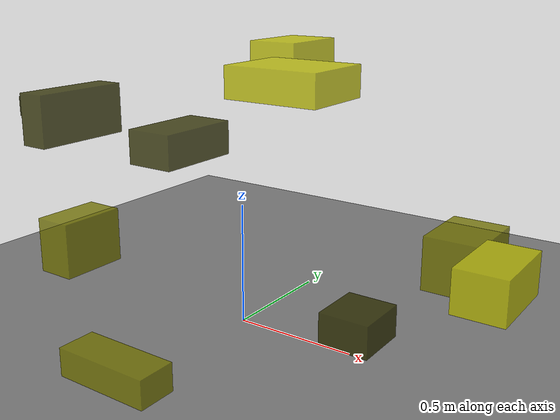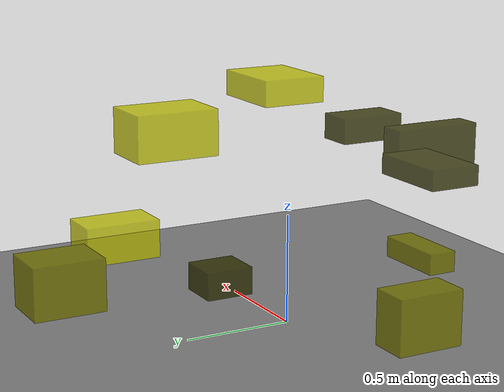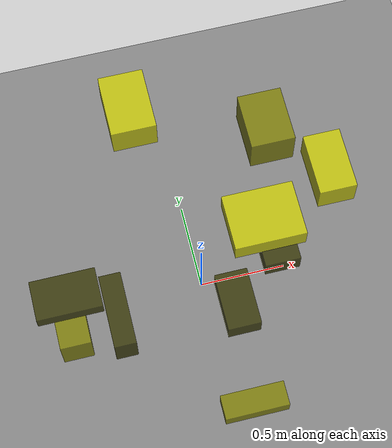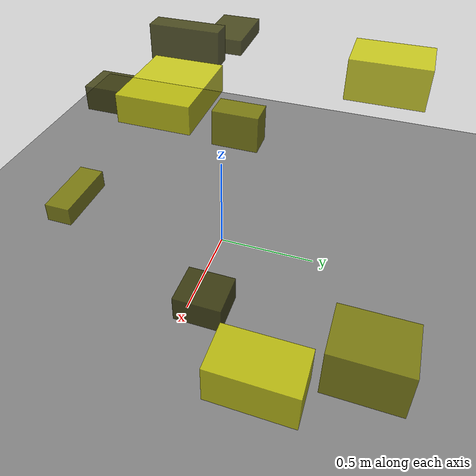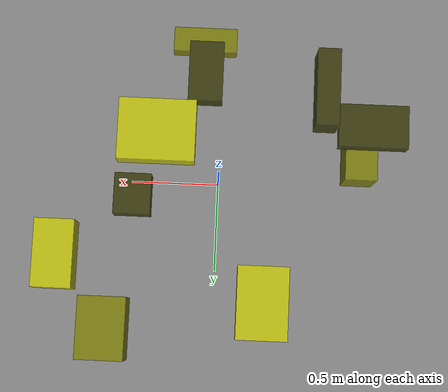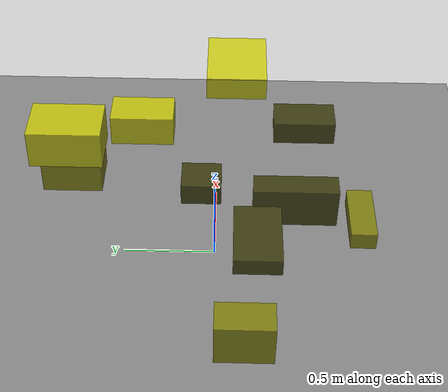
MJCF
<?xml version="1.0"?>
<mujoco model="obstacle_scene">
  <compiler angle="radian" coordinate="local"/>
  <option timestep="0.001" gravity="0 0 -9.81"/>

  <asset>
    <material name="obstacle_mat" rgba="0.8 0.8 0.0 0.8"/>
    <material name="ground_mat" rgba="0.5 0.5 0.5 1"/>
  </asset>

  <worldbody>
    <!-- Ground plane -->
    <geom name="ground" type="plane" size="3 3 0.1" material="ground_mat"/>

    <!-- Obstacles -->
    <body name="obstacle_0" pos="-0.760513 -0.202006 0.848205">
      <geom name="obs_0" type="box" size="0.172398 0.107752 0.040955" rgba="0.2 0.2 0.0 0.8"/>
    </body>
    <body name="obstacle_1" pos="0.106007 -0.807334 0.179684">
      <geom name="obs_1" type="box" size="0.180283 0.069400 0.050643" rgba="0.5 0.5 0.0 0.8"/>
    </body>
    <body name="obstacle_2" pos="-0.229442 0.698878 0.993637">
      <geom name="obs_2" type="box" size="0.120111 0.172753 0.094428" rgba="0.8 0.8 0.0 0.8"/>
    </body>
    <body name="obstacle_3" pos="0.487157 0.086738 0.082884">
      <geom name="obs_3" type="box" size="0.105505 0.117017 0.067389" rgba="0.2 0.2 0.0 0.8"/>
    </body>
    <body name="obstacle_4" pos="0.612155 0.852820 0.142408">
      <geom name="obs_4" type="box" size="0.133793 0.174874 0.127281" rgba="0.5 0.5 0.0 0.8"/>
    </body>
    <body name="obstacle_5" pos="0.304652 -0.100674 1.029612">
      <geom name="obs_5" type="box" size="0.185812 0.148274 0.058912" rgba="0.8 0.8 0.0 0.8"/>
    </body>
    <body name="obstacle_6" pos="0.083882 -0.442809 0.849758">
      <geom name="obs_6" type="box" size="0.085292 0.150905 0.058240" rgba="0.2 0.2 0.0 0.8"/>
    </body>
    <body name="obstacle_7" pos="-0.783818 -0.161471 0.242697">
      <geom name="obs_7" type="box" size="0.086767 0.149397 0.121016" rgba="0.5 0.5 0.0 0.8"/>
    </body>
    <body name="obstacle_8" pos="0.890223 0.456134 0.231063">
      <geom name="obs_8" type="box" size="0.111112 0.188825 0.094924" rgba="0.8 0.8 0.0 0.8"/>
    </body>
    <body name="obstacle_9" pos="-0.523215 -0.374471 0.871198">
      <geom name="obs_9" type="box" size="0.056606 0.192614 0.098307" rgba="0.2 0.2 0.0 0.8"/>
    </body>
  </worldbody>
</mujoco>
